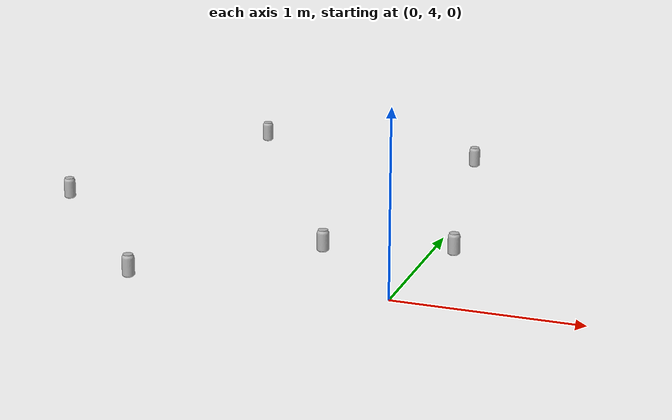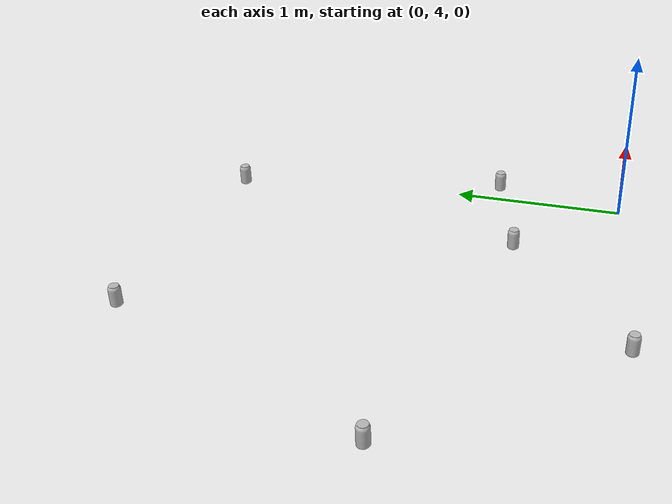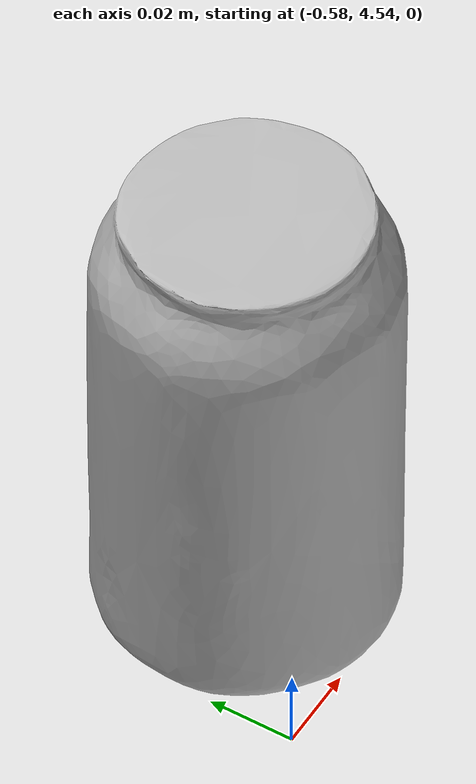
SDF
<?xml version='1.0'?>
<sdf version='1.7'>
  <model name='ex_blocks'>
    <model name='coke_can'>
      <link name='link'>
        <inertial>
          <pose>0 0 0.06 0 -0 0</pose>
          <mass>0.39</mass>
          <inertia>
            <ixx>0.00055575</ixx>
            <ixy>0</ixy>
            <ixz>0</ixz>
            <iyy>0.00055575</iyy>
            <iyz>0</iyz>
            <izz>0.0001755</izz>
          </inertia>
        </inertial>
        <collision name='collision'>
          <pose>0.003937 0.004724 -0.18 0 -0 0</pose>
          <geometry>
            <mesh>
              <uri>model://coke_can/meshes/coke_can.dae</uri>
            </mesh>
          </geometry>
          <surface>
            <friction>
              <ode>
                <mu>1</mu>
                <mu2>1</mu2>
              </ode>
            </friction>
            <contact>
              <ode>
                <kp>1e+07</kp>
                <kd>1</kd>
                <min_depth>0.001</min_depth>
                <max_vel>0.1</max_vel>
              </ode>
            </contact>
          </surface>
        </collision>
        <visual name='visual'>
          <pose>0.003937 0.004724 -0.18 0 -0 0</pose>
          <geometry>
            <mesh>
              <uri>model://coke_can/meshes/coke_can.dae</uri>
            </mesh>
          </geometry>
        </visual>
      </link>
      <pose>-0.553689 4.56744 0 0 -0 0</pose>
    </model>
    <model name='coke_can_clone'>
      <link name='link'>
        <inertial>
          <pose>0 0 0.06 0 -0 0</pose>
          <mass>0.39</mass>
          <inertia>
            <ixx>0.00055575</ixx>
            <ixy>0</ixy>
            <ixz>0</ixz>
            <iyy>0.00055575</iyy>
            <iyz>0</iyz>
            <izz>0.0001755</izz>
          </inertia>
        </inertial>
        <collision name='collision'>
          <pose>0.003937 0.004724 -0.18 0 -0 0</pose>
          <geometry>
            <mesh>
              <uri>model://coke_can/meshes/coke_can.dae</uri>
            </mesh>
          </geometry>
          <surface>
            <friction>
              <ode>
                <mu>1</mu>
                <mu2>1</mu2>
              </ode>
            </friction>
            <contact>
              <ode>
                <kp>1e+07</kp>
                <kd>1</kd>
                <min_depth>0.001</min_depth>
                <max_vel>0.1</max_vel>
              </ode>
            </contact>
          </surface>
        </collision>
        <visual name='visual'>
          <pose>0.003937 0.004724 -0.18 0 -0 0</pose>
          <geometry>
            <mesh>
              <uri>model://coke_can/meshes/coke_can.dae</uri>
            </mesh>
          </geometry>
        </visual>
      </link>
      <pose>0.126368 4.75635 0 0 -0 0</pose>
    </model>
    <model name='coke_can_clone_0'>
      <link name='link'>
        <inertial>
          <pose>0 0 0.06 0 -0 0</pose>
          <mass>0.39</mass>
          <inertia>
            <ixx>0.00055575</ixx>
            <ixy>0</ixy>
            <ixz>0</ixz>
            <iyy>0.00055575</iyy>
            <iyz>0</iyz>
            <izz>0.0001755</izz>
          </inertia>
        </inertial>
        <collision name='collision'>
          <pose>0.003937 0.004724 -0.18 0 -0 0</pose>
          <geometry>
            <mesh>
              <uri>model://coke_can/meshes/coke_can.dae</uri>
            </mesh>
          </geometry>
          <surface>
            <friction>
              <ode>
                <mu>1</mu>
                <mu2>1</mu2>
              </ode>
            </friction>
            <contact>
              <ode>
                <kp>1e+07</kp>
                <kd>1</kd>
                <min_depth>0.001</min_depth>
                <max_vel>0.1</max_vel>
              </ode>
            </contact>
          </surface>
        </collision>
        <visual name='visual'>
          <pose>0.003937 0.004724 -0.18 0 -0 0</pose>
          <geometry>
            <mesh>
              <uri>model://coke_can/meshes/coke_can.dae</uri>
            </mesh>
          </geometry>
        </visual>
      </link>
      <pose>-0.189014 6.37217 0 0 -0 0</pose>
    </model>
    <model name='coke_can_clone_1'>
      <link name='link'>
        <inertial>
          <pose>0 0 0.06 0 -0 0</pose>
          <mass>0.39</mass>
          <inertia>
            <ixx>0.00055575</ixx>
            <ixy>0</ixy>
            <ixz>0</ixz>
            <iyy>0.00055575</iyy>
            <iyz>0</iyz>
            <izz>0.0001755</izz>
          </inertia>
        </inertial>
        <collision name='collision'>
          <pose>0.003937 0.004724 -0.18 0 -0 0</pose>
          <geometry>
            <mesh>
              <uri>model://coke_can/meshes/coke_can.dae</uri>
            </mesh>
          </geometry>
          <surface>
            <friction>
              <ode>
                <mu>1</mu>
                <mu2>1</mu2>
              </ode>
            </friction>
            <contact>
              <ode>
                <kp>1e+07</kp>
                <kd>1</kd>
                <min_depth>0.001</min_depth>
                <max_vel>0.1</max_vel>
              </ode>
            </contact>
          </surface>
        </collision>
        <visual name='visual'>
          <pose>0.003937 0.004724 -0.18 0 -0 0</pose>
          <geometry>
            <mesh>
              <uri>model://coke_can/meshes/coke_can.dae</uri>
            </mesh>
          </geometry>
        </visual>
      </link>
      <pose>-1.6247 6.47922 0 0 -0 0</pose>
    </model>
    <model name='coke_can_clone_2'>
      <link name='link'>
        <inertial>
          <pose>0 0 0.06 0 -0 0</pose>
          <mass>0.39</mass>
          <inertia>
            <ixx>0.00055575</ixx>
            <ixy>0</ixy>
            <ixz>0</ixz>
            <iyy>0.00055575</iyy>
            <iyz>0</iyz>
            <izz>0.0001755</izz>
          </inertia>
        </inertial>
        <collision name='collision'>
          <pose>0.003937 0.004724 -0.18 0 -0 0</pose>
          <geometry>
            <mesh>
              <uri>model://coke_can/meshes/coke_can.dae</uri>
            </mesh>
          </geometry>
          <surface>
            <friction>
              <ode>
                <mu>1</mu>
                <mu2>1</mu2>
              </ode>
            </friction>
            <contact>
              <ode>
                <kp>1e+07</kp>
                <kd>1</kd>
                <min_depth>0.001</min_depth>
                <max_vel>0.1</max_vel>
              </ode>
            </contact>
          </surface>
        </collision>
        <visual name='visual'>
          <pose>0.003937 0.004724 -0.18 0 -0 0</pose>
          <geometry>
            <mesh>
              <uri>model://coke_can/meshes/coke_can.dae</uri>
            </mesh>
          </geometry>
        </visual>
      </link>
      <pose>-2.27958 4.93649 0 0 -0 0</pose>
    </model>
    <model name='coke_can_clone_3'>
      <link name='link'>
        <inertial>
          <pose>0 0 0.06 0 -0 0</pose>
          <mass>0.39</mass>
          <inertia>
            <ixx>0.00055575</ixx>
            <ixy>0</ixy>
            <ixz>0</ixz>
            <iyy>0.00055575</iyy>
            <iyz>0</iyz>
            <izz>0.0001755</izz>
          </inertia>
        </inertial>
        <collision name='collision'>
          <pose>0.003937 0.004724 -0.18 0 -0 0</pose>
          <geometry>
            <mesh>
              <uri>model://coke_can/meshes/coke_can.dae</uri>
            </mesh>
          </geometry>
          <surface>
            <friction>
              <ode>
                <mu>1</mu>
                <mu2>1</mu2>
              </ode>
            </friction>
            <contact>
              <ode>
                <kp>1e+07</kp>
                <kd>1</kd>
                <min_depth>0.001</min_depth>
                <max_vel>0.1</max_vel>
              </ode>
            </contact>
          </surface>
        </collision>
        <visual name='visual'>
          <pose>0.003937 0.004724 -0.18 0 -0 0</pose>
          <geometry>
            <mesh>
              <uri>model://coke_can/meshes/coke_can.dae</uri>
            </mesh>
          </geometry>
        </visual>
      </link>
      <pose>-1.37283 3.85973 0 0 -0 0</pose>
    </model>
    <static>1</static>
    <allow_auto_disable>1</allow_auto_disable>
  </model>
</sdf>
